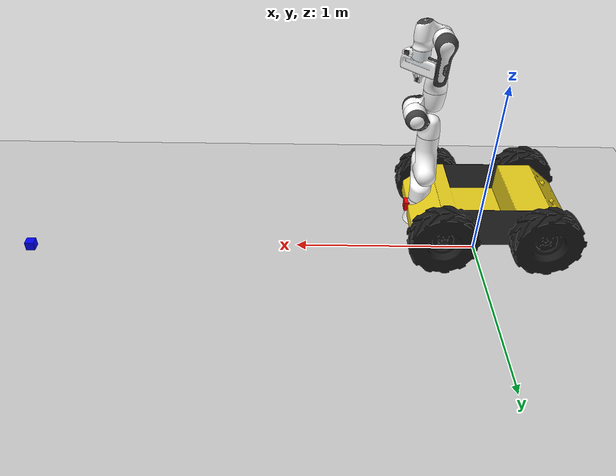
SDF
<?xml version="1.0" ?>
<sdf version="1.8">
  <world name="pick_and_place_world">

    <plugin
      filename="libignition-gazebo-physics-system.so"
      name="ignition::gazebo::systems::Physics">
    </plugin>

    <plugin
      filename="libignition-gazebo-sensors-system.so"
      name="ignition::gazebo::systems::Sensors">
      <render_engine>ogre2</render_engine>
    </plugin>

    <plugin
      filename="libignition-gazebo-user-commands-system.so"
      name="ignition::gazebo::systems::UserCommands">
    </plugin>

    <plugin
      filename="libignition-gazebo-scene-broadcaster-system.so"
      name="ignition::gazebo::systems::SceneBroadcaster">
    </plugin>
    <include>
      <uri>model://husky_panda</uri>
      <name>husky_panda</name>
      <pose>0 0 0.2 0 0 0</pose>
    </include>

    <physics name="1ms" type="ignored">
      <max_step_size>0.001</max_step_size>
      <real_time_factor>1.0</real_time_factor>
    </physics>

    <include><uri>https://fuel.gazebosim.org/1.0/OpenRobotics/models/Sun</uri></include>
    <include><uri>https://fuel.gazebosim.org/1.0/OpenRobotics/models/Ground Plane</uri></include>

    <model name="blue_cube">
      <pose>2.5 0.05 0.025 0 0 0</pose>
      <link name="link">
        <inertial>
          <mass>0.1</mass>
          <inertia><ixx>0.0000416</ixx><ixy>0</ixy><ixz>0</ixz><iyy>0.0000416</iyy><iyz>0</iyz><izz>0.0000416</izz></inertia>
        </inertial>
        <visual name="visual">
          <geometry><box><size>0.05 0.05 0.05</size></box></geometry>
          <material><ambient>0 0 1 1</ambient><diffuse>0 0 1 1</diffuse></material>
        </visual>
        <collision name="collision">
          <geometry><box><size>0.05 0.05 0.05</size></box></geometry>
          <surface><friction><ode><mu>1.0</mu><mu2>1.0</mu2></ode></friction></surface>
        </collision>
      </link>
    </model>

  </world>
</sdf>

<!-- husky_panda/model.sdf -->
<sdf version="1.8">
  <model name="husky_panda">

    <pose>0 0 0.3 0 0 0</pose>

    <link name="base_link">
      <inertial>
        <mass>33.85</mass>
        <inertia><ixx>2.2</ixx><iyy>3.4</iyy><izz>2.1</izz><ixy>0</ixy><ixz>0</ixz><iyz>0</iyz></inertia>
      </inertial>
      <collision name="base_collision">
        <pose>0 0 0.06 0 0 0</pose>
        <geometry><box><size>1.0 0.40 0.25</size></box></geometry>
      </collision>
      <visual name="base_visual">
        <geometry><mesh><uri>model://husky/meshes/base_link.stl</uri></mesh></geometry>
        <material><ambient>0.2 0.2 0.2 1</ambient><diffuse>0.2 0.2 0.2 1</diffuse></material>
      </visual>
      <visual name="top_plate">
        <geometry><mesh><uri>model://husky/meshes/top_plate.stl</uri></mesh></geometry>
        <material><ambient>0.9 0.8 0.1 1</ambient><diffuse>0.9 0.8 0.1 1</diffuse></material>
      </visual>

      <visual name="camera_visual">
        <pose>0.4 0 0.1 0 0 0</pose>
        <geometry><box><size>0.05 0.05 0.05</size></box></geometry>
        <material><ambient>1 0 0 1</ambient><diffuse>1 0 0 1</diffuse></material>
      </visual>

      <sensor name="husky_camera" type="rgbd">
        <pose>0.4 0 0.1 0 0 0</pose>
        <always_on>1</always_on>
        <update_rate>30</update_rate>
        <visualize>true</visualize>
        <topic>husky_camera</topic>
        <camera>
          <horizontal_fov>1.05</horizontal_fov>
          <image>
            <width>640</width>
            <height>480</height>
            <format>R8G8B8</format>
          </image>
          <clip>
            <near>0.01</near>
            <far>10.0</far>
          </clip>
        </camera>
      </sensor>
    </link>

    <link name="front_left_wheel">
      <pose>0.26 0.285 0.09 0 0 0</pose>
      <inertial>
        <mass>2.637</mass>
        <inertia><ixx>0.02467</ixx><ixy>0</ixy><ixz>0</ixz><iyy>0.04411</iyy><iyz>0</iyz><izz>0.02467</izz></inertia>
      </inertial>
      <collision name="collision">
        <pose>0 0 0 1.5708 0 0</pose>
        <geometry><cylinder><radius>0.177</radius><length>0.114</length></cylinder></geometry>
        <surface><friction><ode><mu>1.0</mu><mu2>1.0</mu2></ode></friction></surface>
      </collision>
      <visual name="visual">
        <geometry><mesh><uri>model://husky/meshes/wheel.stl</uri></mesh></geometry>
        <material><ambient>0.1 0.1 0.1 1</ambient><diffuse>0.1 0.1 0.1 1</diffuse></material>
      </visual>
    </link>
    <joint name="front_left_joint" type="revolute">
      <parent>base_link</parent>
      <child>front_left_wheel</child>
      <axis><xyz>0 1 0</xyz></axis>
    </joint>

    <link name="front_right_wheel">
      <pose>0.26 -0.285 0.09 0 0 0</pose>
      <inertial>
        <mass>2.637</mass>
        <inertia><ixx>0.02467</ixx><ixy>0</ixy><ixz>0</ixz><iyy>0.04411</iyy><iyz>0</iyz><izz>0.02467</izz></inertia>
      </inertial>
      <collision name="collision">
        <pose>0 0 0 1.5708 0 0</pose>
        <geometry><cylinder><radius>0.177</radius><length>0.114</length></cylinder></geometry>
        <surface><friction><ode><mu>1.0</mu><mu2>1.0</mu2></ode></friction></surface>
      </collision>
      <visual name="visual">
        <geometry><mesh><uri>model://husky/meshes/wheel.stl</uri></mesh></geometry>
        <material><ambient>0.1 0.1 0.1 1</ambient><diffuse>0.1 0.1 0.1 1</diffuse></material>
      </visual>
    </link>
    <joint name="front_right_joint" type="revolute">
      <parent>base_link</parent>
      <child>front_right_wheel</child>
      <axis><xyz>0 1 0</xyz></axis>
    </joint>

    <link name="back_left_wheel">
      <pose>-0.26 0.285 0.09 0 0 0</pose>
      <inertial>
        <mass>2.637</mass>
        <inertia><ixx>0.02467</ixx><ixy>0</ixy><ixz>0</ixz><iyy>0.04411</iyy><iyz>0</iyz><izz>0.02467</izz></inertia>
      </inertial>
      <collision name="collision">
        <pose>0 0 0 1.5708 0 0</pose>
        <geometry><cylinder><radius>0.177</radius><length>0.114</length></cylinder></geometry>
        <surface><friction><ode><mu>1.0</mu><mu2>1.0</mu2></ode></friction></surface>
      </collision>
      <visual name="visual">
        <geometry><mesh><uri>model://husky/meshes/wheel.stl</uri></mesh></geometry>
        <material><ambient>0.1 0.1 0.1 1</ambient><diffuse>0.1 0.1 0.1 1</diffuse></material>
      </visual>
    </link>
    <joint name="back_left_joint" type="revolute">
      <parent>base_link</parent>
      <child>back_left_wheel</child>
      <axis><xyz>0 1 0</xyz></axis>
    </joint>

    <link name="back_right_wheel">
      <pose>-0.26 -0.285 0.09 0 0 0</pose>
      <inertial>
        <mass>2.637</mass>
        <inertia><ixx>0.02467</ixx><ixy>0</ixy><ixz>0</ixz><iyy>0.04411</iyy><iyz>0</iyz><izz>0.02467</izz></inertia>
      </inertial>
      <collision name="collision">
        <pose>0 0 0 1.5708 0 0</pose>
        <geometry><cylinder><radius>0.177</radius><length>0.114</length></cylinder></geometry>
        <surface><friction><ode><mu>1.0</mu><mu2>1.0</mu2></ode></friction></surface>
      </collision>
      <visual name="visual">
        <geometry><mesh><uri>model://husky/meshes/wheel.stl</uri></mesh></geometry>
        <material><ambient>0.1 0.1 0.1 1</ambient><diffuse>0.1 0.1 0.1 1</diffuse></material>
      </visual>
    </link>
    <joint name="back_right_joint" type="revolute">
      <parent>base_link</parent>
      <child>back_right_wheel</child>
      <axis><xyz>0 1 0</xyz></axis>
    </joint>

    <joint name="husky_panda_connector" type="fixed">
      <parent>base_link</parent>
      <child>panda_link0</child>
      <pose relative_to="base_link">0.35 0 0.0065 0 0 0</pose>
    </joint>

    <link name="panda_link0">
      <pose relative_to="husky_panda_connector">0 0 0 0 0 0</pose>
      <visual name="panda_link0_visual">
        <geometry><mesh><uri>model://panda/meshes/visual/link0.dae</uri></mesh></geometry>
      </visual>
      <collision name="panda_link0_collision">
        <geometry><mesh><uri>model://panda/meshes/collision/link0.stl</uri></mesh></geometry>
      </collision>
      <inertial>
        <mass>2.81</mass><inertia><ixx>0.0075</ixx><iyy>0.010</iyy><izz>0.009</izz><ixy>0</ixy><ixz>0</ixz><iyz>0</iyz></inertia>
      </inertial>
    </link>

    <link name="panda_link1">
      <pose relative_to="panda_joint1">0 0 0 0 0 0</pose>
      <visual name="panda_link1_visual"><geometry><mesh><uri>model://panda/meshes/visual/link1.dae</uri></mesh></geometry></visual>
      <collision name="panda_link1_collision"><geometry><mesh><uri>model://panda/meshes/collision/link1.stl</uri></mesh></geometry></collision>
      <inertial><mass>2.64</mass><inertia><ixx>0.017</ixx><iyy>0.015</iyy><izz>0.006</izz><ixy>0</ixy><ixz>0</ixz><iyz>0</iyz></inertia></inertial>
    </link>
    <joint name="panda_joint1" type="revolute">
      <pose relative_to="panda_link0">0 0 0.333 0 0 0</pose>
      <parent>panda_link0</parent> <child>panda_link1</child>
      <axis><xyz>0 0 1</xyz><limit><lower>-2.8973</lower><upper>2.8973</upper><effort>87</effort><velocity>2.175</velocity></limit></axis>
    </joint>

    <link name="panda_link2">
      <pose relative_to="panda_joint2">0 0 0 0 0 0</pose>
      <visual name="panda_link2_visual"><geometry><mesh><uri>model://panda/meshes/visual/link2.dae</uri></mesh></geometry></visual>
      <collision name="panda_link2_collision"><geometry><mesh><uri>model://panda/meshes/collision/link2.stl</uri></mesh></geometry></collision>
      <inertial><mass>2.66</mass><inertia><ixx>0.017</ixx><iyy>0.006</iyy><izz>0.015</izz><ixy>0</ixy><ixz>0</ixz><iyz>0</iyz></inertia></inertial>
    </link>
    <joint name="panda_joint2" type="revolute">
      <pose relative_to="panda_link1">0 0 0 -1.5708 0 0</pose>
      <parent>panda_link1</parent> <child>panda_link2</child>
      <axis><xyz>0 0 1</xyz><limit><lower>-1.7628</lower><upper>1.7628</upper><effort>87</effort><velocity>2.175</velocity></limit></axis>
    </joint>

    <link name="panda_link3">
      <pose relative_to="panda_joint3">0 0 0 0 0 0</pose>
      <visual name="panda_link3_visual"><geometry><mesh><uri>model://panda/meshes/visual/link3.dae</uri></mesh></geometry></visual>
      <collision name="panda_link3_collision"><geometry><mesh><uri>model://panda/meshes/collision/link3.stl</uri></mesh></geometry></collision>
      <inertial><mass>2.32</mass><inertia><ixx>0.007</ixx><iyy>0.009</iyy><izz>0.007</izz><ixy>0</ixy><ixz>0</ixz><iyz>0</iyz></inertia></inertial>
    </link>
    <joint name="panda_joint3" type="revolute">
      <pose relative_to="panda_link2">0 -0.316 0 1.5708 0 0</pose>
      <parent>panda_link2</parent> <child>panda_link3</child>
      <axis><xyz>0 0 1</xyz><limit><lower>-2.8973</lower><upper>2.8973</upper><effort>87</effort><velocity>2.175</velocity></limit></axis>
    </joint>

    <link name="panda_link4">
      <pose relative_to="panda_joint4">0 0 0 0 0 0</pose>
      <visual name="panda_link4_visual"><geometry><mesh><uri>model://panda/meshes/visual/link4.dae</uri></mesh></geometry></visual>
      <collision name="panda_link4_collision"><geometry><mesh><uri>model://panda/meshes/collision/link4.stl</uri></mesh></geometry></collision>
      <inertial><mass>2.31</mass><inertia><ixx>0.007</ixx><iyy>0.008</iyy><izz>0.009</izz><ixy>0</ixy><ixz>0</ixz><iyz>0</iyz></inertia></inertial>
    </link>
    <joint name="panda_joint4" type="revolute">
      <pose relative_to="panda_link3">0.0825 0 0 1.5708 0 0</pose>
      <parent>panda_link3</parent> <child>panda_link4</child>
      <axis><xyz>0 0 1</xyz><limit><lower>-3.0718</lower><upper>-0.0698</upper><effort>87</effort><velocity>2.175</velocity></limit></axis>
    </joint>

    <link name="panda_link5">
      <pose relative_to="panda_joint5">0 0 0 0 0 0</pose>
      <visual name="panda_link5_visual"><geometry><mesh><uri>model://panda/meshes/visual/link5.dae</uri></mesh></geometry></visual>
      <collision name="panda_link5_collision"><geometry><mesh><uri>model://panda/meshes/collision/link5.stl</uri></mesh></geometry></collision>
      <inertial><mass>2.62</mass><inertia><ixx>0.029</ixx><iyy>0.027</iyy><izz>0.004</izz><ixy>0</ixy><ixz>0</ixz><iyz>0</iyz></inertia></inertial>
    </link>
    <joint name="panda_joint5" type="revolute">
      <pose relative_to="panda_link4">-0.0825 0.384 0 -1.5708 0 0</pose>
      <parent>panda_link4</parent> <child>panda_link5</child>
      <axis><xyz>0 0 1</xyz><limit><lower>-2.8973</lower><upper>2.8973</upper><effort>12</effort><velocity>2.61</velocity></limit></axis>
    </joint>

    <link name="panda_link6">
      <pose relative_to="panda_joint6">0 0 0 0 0 0</pose>
      <visual name="panda_link6_visual"><geometry><mesh><uri>model://panda/meshes/visual/link6.dae</uri></mesh></geometry></visual>
      <collision name="panda_link6_collision"><geometry><mesh><uri>model://panda/meshes/collision/link6.stl</uri></mesh></geometry></collision>
      <inertial><mass>1.50</mass><inertia><ixx>0.002</ixx><iyy>0.003</iyy><izz>0.005</izz><ixy>0</ixy><ixz>0</ixz><iyz>0</iyz></inertia></inertial>
    </link>
    <joint name="panda_joint6" type="revolute">
      <pose relative_to="panda_link5">0 0 0 1.5708 0 0</pose>
      <parent>panda_link5</parent> <child>panda_link6</child>
      <axis><xyz>0 0 1</xyz><limit><lower>-0.0175</lower><upper>3.7525</upper><effort>12</effort><velocity>2.61</velocity></limit></axis>
    </joint>

    <link name="panda_link7">
      <pose relative_to="panda_joint7">0 0 0 0 0 0</pose>
      <visual name="panda_link7_visual"><geometry><mesh><uri>model://panda/meshes/visual/link7.dae</uri></mesh></geometry></visual>
      <collision name="panda_link7_collision"><geometry><mesh><uri>model://panda/meshes/collision/link7.stl</uri></mesh></geometry></collision>
      <inertial><mass>0.52</mass><inertia><ixx>0.0008</ixx><iyy>0.0008</iyy><izz>0.0006</izz><ixy>0</ixy><ixz>0</ixz><iyz>0</iyz></inertia></inertial>
    </link>
    <joint name="panda_joint7" type="revolute">
      <pose relative_to="panda_link6">0.088 0 0 1.5708 0 0</pose>
      <parent>panda_link6</parent> <child>panda_link7</child>
      <axis><xyz>0 0 1</xyz><limit><lower>-2.8973</lower><upper>2.8973</upper><effort>12</effort><velocity>2.61</velocity></limit></axis>
    </joint>

    <joint name="panda_hand_joint" type="fixed">
      <pose relative_to="panda_link7">0 0 0.107 0 0 -0.7854</pose>
      <parent>panda_link7</parent> <child>panda_hand</child>
    </joint>

    <link name="panda_hand">
      <pose relative_to="panda_hand_joint">0 0 0 0 0 0</pose>
      <visual name="panda_hand_visual"><geometry><mesh><uri>model://panda/meshes/visual/hand.dae</uri></mesh></geometry></visual>
      <collision name="panda_hand_collision"><geometry><mesh><uri>model://panda/meshes/collision/hand.stl</uri></mesh></geometry></collision>
      <inertial>
        <mass>0.14</mass>
        <inertia><ixx>0.00054</ixx><iyy>0.00008</iyy><izz>0.00050</izz><ixy>0</ixy><ixz>0</ixz><iyz>0</iyz></inertia>
      </inertial>
    </link>

    <link name="panda_leftfinger">
      <pose relative_to="panda_finger_joint1">0 0 0 0 0 0</pose>
      <visual name="panda_leftfinger_visual"><geometry><mesh><uri>model://panda/meshes/visual/finger.dae</uri></mesh></geometry></visual>
      <collision name="panda_leftfinger_collision"><geometry><mesh><uri>model://panda/meshes/collision/finger.stl</uri></mesh></geometry></collision>
      <inertial><mass>0.22</mass><inertia><ixx>0.00006</ixx><iyy>0.00006</iyy><izz>0.00001</izz><ixy>0</ixy><ixz>0</ixz><iyz>0</iyz></inertia></inertial>
    </link>

    <link name="panda_rightfinger">
      <pose relative_to="panda_finger_joint2">0 0 0 0 0 0</pose>
      <visual name="panda_rightfinger_visual"><pose>0 0 0 0 0 3.14159</pose><geometry><mesh><uri>model://panda/meshes/visual/finger.dae</uri></mesh></geometry></visual>
      <collision name="panda_rightfinger_collision"><pose>0 0 0 0 0 3.14159</pose><geometry><mesh><uri>model://panda/meshes/collision/finger.stl</uri></mesh></geometry></collision>
      <inertial><mass>0.22</mass><inertia><ixx>0.00006</ixx><iyy>0.00006</iyy><izz>0.00001</izz><ixy>0</ixy><ixz>0</ixz><iyz>0</iyz></inertia></inertial>
    </link>

    <joint name="panda_finger_joint1" type="prismatic">
      <pose relative_to="panda_hand">0 0 0.0584 0 0 0</pose>
      <parent>panda_hand</parent> <child>panda_leftfinger</child>
      <axis><xyz>0 1 0</xyz><limit><lower>0</lower><upper>0.04</upper></limit></axis>
    </joint>
    <joint name="panda_finger_joint2" type="prismatic">
      <pose relative_to="panda_hand">0 0 0.0584 0 0 0</pose>
      <parent>panda_hand</parent> <child>panda_rightfinger</child>
      <axis><xyz>0 -1 0</xyz><limit><lower>0</lower><upper>0.04</upper></limit></axis>
    </joint>

    <plugin filename="libign_ros2_control-system.so" name="ign_ros2_control::IgnitionROS2ControlPlugin">
  <parameters>/home/moonlab/ros_ws/src/husky_panda_sim/config/husky_panda_controllers.yaml</parameters>
</plugin>
    <ros2_control name="IgnitionSystem" type="system">
      <hardware>
        <plugin>ign_ros2_control/IgnitionSystem</plugin>
      </hardware>

      <joint name="front_left_joint"><command_interface name="velocity"/><state_interface name="velocity"/><state_interface name="position"/></joint>
      <joint name="front_right_joint"><command_interface name="velocity"/><state_interface name="velocity"/><state_interface name="position"/></joint>
      <joint name="back_left_joint"><command_interface name="velocity"/><state_interface name="velocity"/><state_interface name="position"/></joint>
      <joint name="back_right_joint"><command_interface name="velocity"/><state_interface name="velocity"/><state_interface name="position"/></joint>

      <joint name="panda_joint1">
        <command_interface name="position"><param name="min">-2.8973</param><param name="max">2.8973</param></command_interface>
        <state_interface name="position"/><state_interface name="velocity"/>
      </joint>
      <joint name="panda_joint2">
        <command_interface name="position"><param name="min">-1.7628</param><param name="max">1.7628</param></command_interface>
        <state_interface name="position"/><state_interface name="velocity"/>
      </joint>
      <joint name="panda_joint3">
        <command_interface name="position"><param name="min">-2.8973</param><param name="max">2.8973</param></command_interface>
        <state_interface name="position"/><state_interface name="velocity"/>
      </joint>
      <joint name="panda_joint4">
        <command_interface name="position"><param name="min">-3.0718</param><param name="max">-0.0698</param></command_interface>
        <state_interface name="position"/><state_interface name="velocity"/>
      </joint>
      <joint name="panda_joint5">
        <command_interface name="position"><param name="min">-2.8973</param><param name="max">2.8973</param></command_interface>
        <state_interface name="position"/><state_interface name="velocity"/>
      </joint>
      <joint name="panda_joint6">
        <command_interface name="position"><param name="min">-0.0175</param><param name="max">3.7525</param></command_interface>
        <state_interface name="position"/><state_interface name="velocity"/>
      </joint>
      <joint name="panda_joint7">
        <command_interface name="position"><param name="min">-2.8973</param><param name="max">2.8973</param></command_interface>
        <state_interface name="position"/><state_interface name="velocity"/>
      </joint>

      <joint name="panda_finger_joint1">
        <command_interface name="position"><param name="min">0.0</param><param name="max">0.04</param></command_interface>
        <state_interface name="position"/><state_interface name="velocity"/>
      </joint>
      <joint name="panda_finger_joint2">
        <command_interface name="position"><param name="min">0.0</param><param name="max">0.04</param></command_interface>
        <state_interface name="position"/><state_interface name="velocity"/>
      </joint>
    </ros2_control>

    <plugin
      filename="libignition-gazebo-diff-drive-system.so"
      name="ignition::gazebo::systems::DiffDrive">

      <left_joint>front_left_joint</left_joint>
      <left_joint>back_left_joint</left_joint>
      <right_joint>front_right_joint</right_joint>
      <right_joint>back_right_joint</right_joint>

      <wheel_separation>0.57</wheel_separation>
      <wheel_radius>0.165</wheel_radius>
      <odom_publish_frequency>20</odom_publish_frequency>

      <topic>/cmd_vel</topic> <odom_topic>/odom</odom_topic>
      <tf_topic>/tf</tf_topic>
      <frame_id>odom</frame_id>
      <child_frame_id>base_link</child_frame_id>
    </plugin>

  </model>
</sdf>
